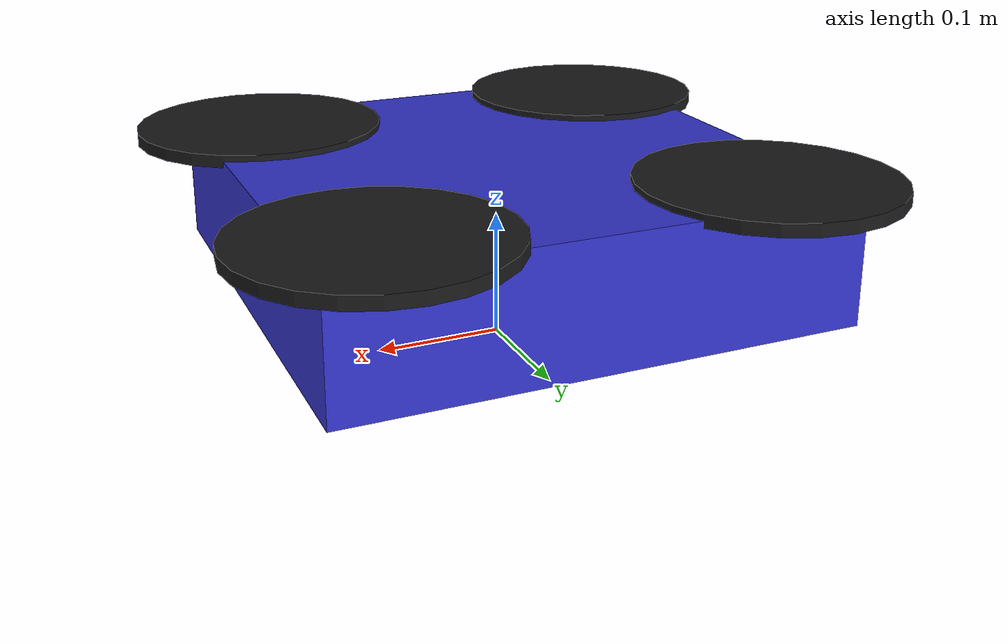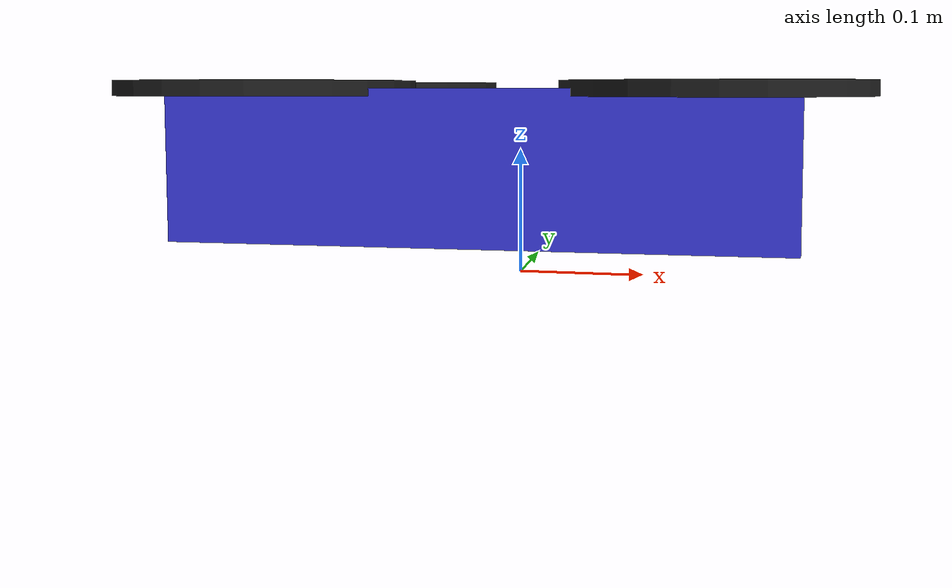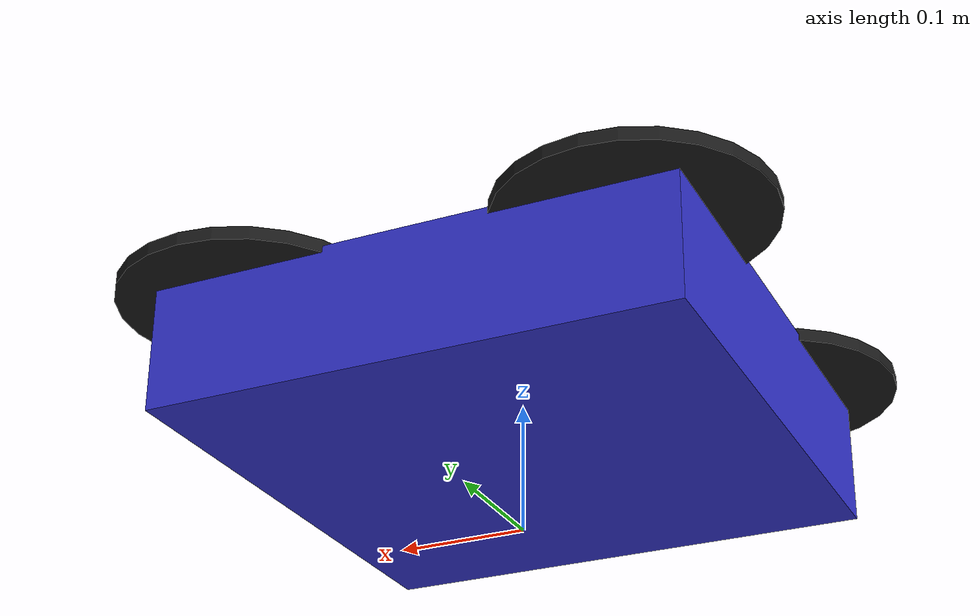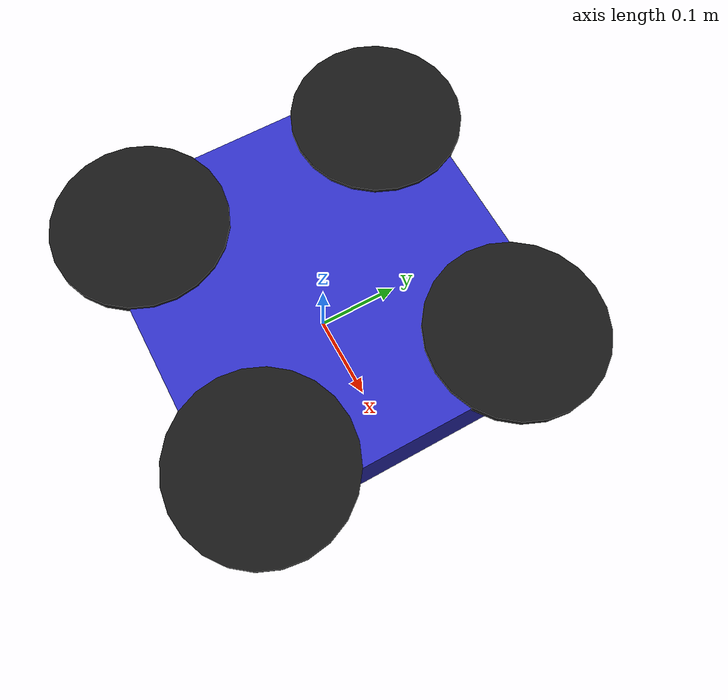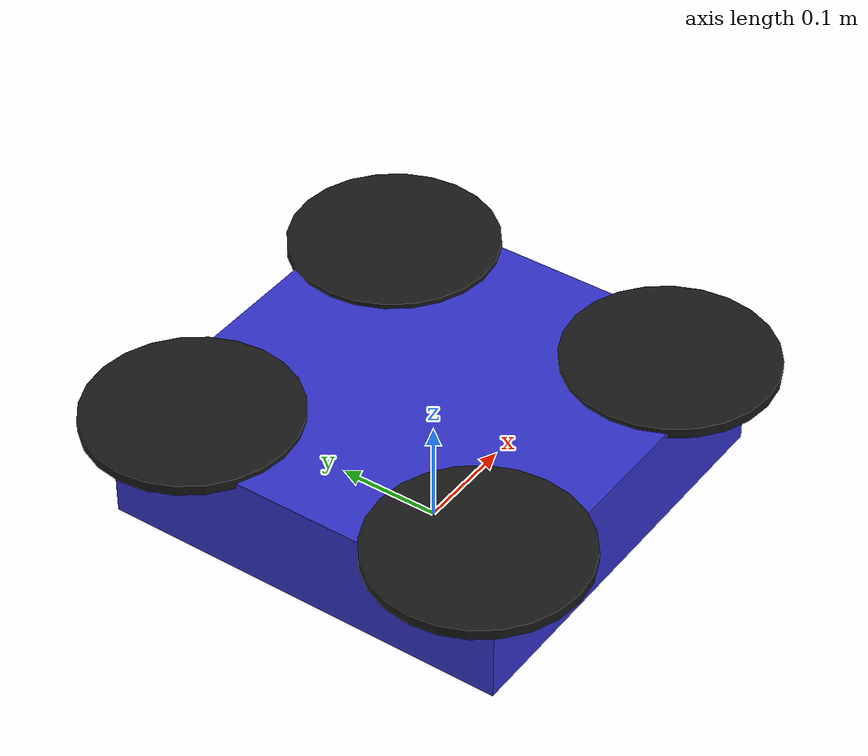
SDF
<?xml version="1.0"?>
<sdf version="1.6">
  <model name="euler_drone">
    <static>false</static>

    <link name="base_link">
      <pose>0 0 0.1 0 0 0</pose>
      <inertial>
        <mass>1.5</mass>
        <inertia>
          <ixx>0.029</ixx><ixy>0</ixy><ixz>0</ixz>
          <iyy>0.029</iyy><iyz>0</iyz>
          <izz>0.055</izz>
        </inertia>
      </inertial>

      <collision name="body_collision">
        <geometry>
          <box><size>0.4 0.4 0.1</size></box>
        </geometry>
      </collision>

      <visual name="body_visual">
        <geometry>
          <box><size>0.4 0.4 0.1</size></box>
        </geometry>
        <material>
          <ambient>0.2 0.2 0.8 1</ambient>
          <diffuse>0.2 0.2 0.8 1</diffuse>
        </material>
      </visual>

      <sensor name="imu" type="imu">
        <always_on>true</always_on>
        <update_rate>100</update_rate>
        <imu>
          <angular_velocity>
            <x><noise type="gaussian"><mean>0</mean><stddev>0.01</stddev></noise></x>
            <y><noise type="gaussian"><mean>0</mean><stddev>0.01</stddev></noise></y>
            <z><noise type="gaussian"><mean>0</mean><stddev>0.01</stddev></noise></z>
          </angular_velocity>
          <linear_acceleration>
            <x><noise type="gaussian"><mean>0</mean><stddev>0.1</stddev></noise></x>
            <y><noise type="gaussian"><mean>0</mean><stddev>0.1</stddev></noise></y>
            <z><noise type="gaussian"><mean>0</mean><stddev>0.1</stddev></noise></z>
          </linear_acceleration>
        </imu>
      </sensor>

      <sensor name="gps" type="gps">
        <always_on>true</always_on>
        <update_rate>10</update_rate>
        <gps>
          <position_sensing>
            <horizontal><noise type="gaussian"><mean>0</mean><stddev>0.5</stddev></noise></horizontal>
            <vertical><noise type="gaussian"><mean>0</mean><stddev>1.0</stddev></noise></vertical>
          </position_sensing>
        </gps>
      </sensor>
    </link>

    <link name="rotor_0">
      <pose>0.15 0.15 0.15 0 0 0</pose>
      <inertial><mass>0.02</mass></inertial>
      <visual name="rotor_visual">
        <geometry><cylinder><radius>0.1</radius><length>0.01</length></cylinder></geometry>
        <material><ambient>0.1 0.1 0.1 1</ambient></material>
      </visual>
    </link>
    <joint name="rotor_0_joint" type="revolute">
      <parent>base_link</parent><child>rotor_0</child>
      <axis><xyz>0 0 1</xyz></axis>
    </joint>

    <link name="rotor_1">
      <pose>-0.15 0.15 0.15 0 0 0</pose>
      <inertial><mass>0.02</mass></inertial>
      <visual name="rotor_visual">
        <geometry><cylinder><radius>0.1</radius><length>0.01</length></cylinder></geometry>
        <material><ambient>0.1 0.1 0.1 1</ambient></material>
      </visual>
    </link>
    <joint name="rotor_1_joint" type="revolute">
      <parent>base_link</parent><child>rotor_1</child>
      <axis><xyz>0 0 1</xyz></axis>
    </joint>

    <link name="rotor_2">
      <pose>-0.15 -0.15 0.15 0 0 0</pose>
      <inertial><mass>0.02</mass></inertial>
      <visual name="rotor_visual">
        <geometry><cylinder><radius>0.1</radius><length>0.01</length></cylinder></geometry>
        <material><ambient>0.1 0.1 0.1 1</ambient></material>
      </visual>
    </link>
    <joint name="rotor_2_joint" type="revolute">
      <parent>base_link</parent><child>rotor_2</child>
      <axis><xyz>0 0 1</xyz></axis>
    </joint>

    <link name="rotor_3">
      <pose>0.15 -0.15 0.15 0 0 0</pose>
      <inertial><mass>0.02</mass></inertial>
      <visual name="rotor_visual">
        <geometry><cylinder><radius>0.1</radius><length>0.01</length></cylinder></geometry>
        <material><ambient>0.1 0.1 0.1 1</ambient></material>
      </visual>
    </link>
    <joint name="rotor_3_joint" type="revolute">
      <parent>base_link</parent><child>rotor_3</child>
      <axis><xyz>0 0 1</xyz></axis>
    </joint>

    <plugin name="euler_swarm_plugin" filename="libeuler_gazebo_plugin.so">
      <drone_id>0</drone_id>
      <broadcast_port>15560</broadcast_port>
      <update_rate>10</update_rate>
    </plugin>
  </model>
</sdf>
